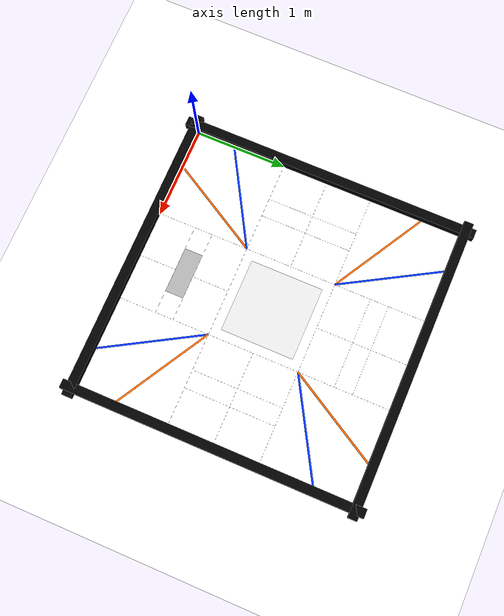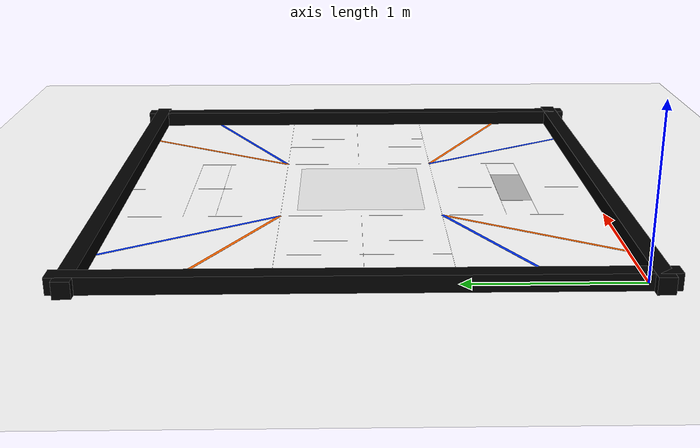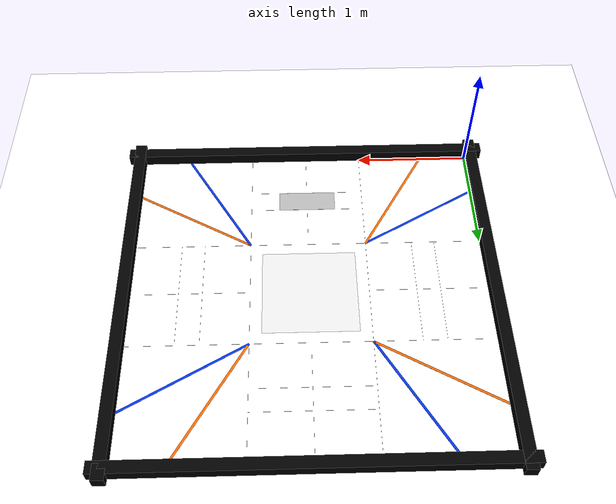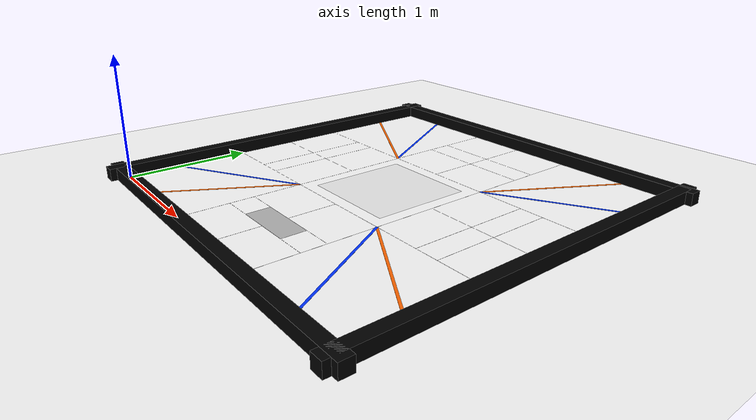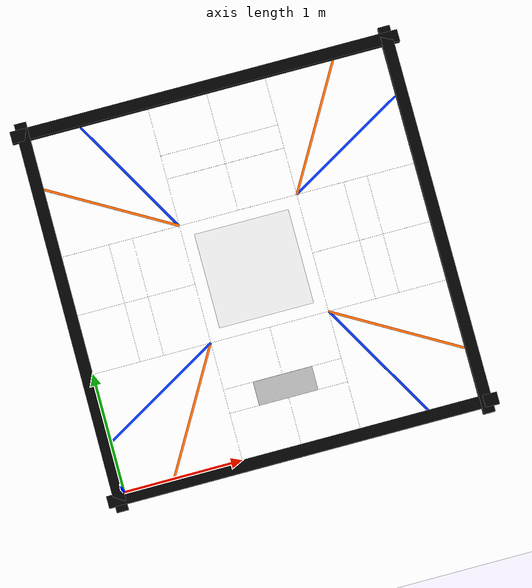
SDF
<?xml version='1.0' encoding='utf-8'?>
<sdf version="1.7">
  <world name="wro_track_2026">
    <physics name="default_physics" default="true" type="ode">
      <max_step_size>0.001</max_step_size>
      <real_time_factor>1.0</real_time_factor>
      <real_time_update_rate>1000</real_time_update_rate>
    </physics>
    <light name="sun" type="directional">
      <pose>0 0 10 0 0 0</pose>
      <diffuse>0.8 0.8 0.8 1</diffuse>
      <specular>0.2 0.2 0.2 1</specular>
      <direction>-0.5 -0.5 -1.0</direction>
      <cast_shadows>true</cast_shadows>
    </light>
    <light name="ambient_light" type="point">
      <pose>0 0 3 0 0 0</pose>
      <diffuse>0.5 0.5 0.5 1</diffuse>
      <specular>0.1 0.1 0.1 1</specular>
      <attenuation>
        <range>20</range>
        <constant>0.5</constant>
        <linear>0.01</linear>
        <quadratic>0.001</quadratic>
      </attenuation>
    </light>
    <model name="ground">
      <static>true</static>
      <pose>1.5 1.5 0 0 0 0</pose>
      <link name="link">
        <visual name="visual">
          <geometry>
            <plane>
              <normal>0 0 1</normal>
              <size>3.2 3.2</size>
            </plane>
          </geometry>
          <material>
            <ambient>1.0 1.0 1.0 1</ambient>
            <diffuse>1.0 1.0 1.0 1</diffuse>
          </material>
        </visual>
        <collision name="collision">
          <geometry>
            <plane>
              <normal>0 0 1</normal>
              <size>3.2 3.2</size>
            </plane>
          </geometry>
          <surface>
            <friction>
              <ode>
                <mu>0.8</mu>
                <mu2>0.8</mu2>
              </ode>
            </friction>
          </surface>
        </collision>
      </link>
    </model>
    <model name="exterior_wall_north">
      <static>true</static>
      <pose>1.5 3.05 0.05 0 0 0</pose>
      <link name="link">
        <visual name="visual">
          <geometry>
            <box>
              <size>3.3000000000000003 0.1 0.1</size>
            </box>
          </geometry>
          <material>
            <ambient>0.0 0.0 0.0 1</ambient>
            <diffuse>0.0 0.0 0.0 1</diffuse>
          </material>
        </visual>
        <collision name="collision">
          <geometry>
            <box>
              <size>3.3800000000000003 0.18 0.1</size>
            </box>
          </geometry>
          <surface>
            <contact>
              <ode>
                <kp>1e8</kp>
                <kd>1000</kd>
                <max_vel>0.0</max_vel>
                <min_depth>0.0</min_depth>
              </ode>
            </contact>
          </surface>
        </collision>
      </link>
    </model>
    <model name="exterior_wall_south">
      <static>true</static>
      <pose>1.5 -0.05 0.05 0 0 0</pose>
      <link name="link">
        <visual name="visual">
          <geometry>
            <box>
              <size>3.3000000000000003 0.1 0.1</size>
            </box>
          </geometry>
          <material>
            <ambient>0.0 0.0 0.0 1</ambient>
            <diffuse>0.0 0.0 0.0 1</diffuse>
          </material>
        </visual>
        <collision name="collision">
          <geometry>
            <box>
              <size>3.3800000000000003 0.18 0.1</size>
            </box>
          </geometry>
          <surface>
            <contact>
              <ode>
                <kp>1e8</kp>
                <kd>1000</kd>
                <max_vel>0.0</max_vel>
                <min_depth>0.0</min_depth>
              </ode>
            </contact>
          </surface>
        </collision>
      </link>
    </model>
    <model name="exterior_wall_east">
      <static>true</static>
      <pose>3.05 1.5 0.05 0 0 0</pose>
      <link name="link">
        <visual name="visual">
          <geometry>
            <box>
              <size>0.1 3.3000000000000003 0.1</size>
            </box>
          </geometry>
          <material>
            <ambient>0.0 0.0 0.0 1</ambient>
            <diffuse>0.0 0.0 0.0 1</diffuse>
          </material>
        </visual>
        <collision name="collision">
          <geometry>
            <box>
              <size>0.18 3.3800000000000003 0.1</size>
            </box>
          </geometry>
          <surface>
            <contact>
              <ode>
                <kp>1e8</kp>
                <kd>1000</kd>
                <max_vel>0.0</max_vel>
                <min_depth>0.0</min_depth>
              </ode>
            </contact>
          </surface>
        </collision>
      </link>
    </model>
    <model name="exterior_wall_west">
      <static>true</static>
      <pose>-0.05 1.5 0.05 0 0 0</pose>
      <link name="link">
        <visual name="visual">
          <geometry>
            <box>
              <size>0.1 3.3000000000000003 0.1</size>
            </box>
          </geometry>
          <material>
            <ambient>0.0 0.0 0.0 1</ambient>
            <diffuse>0.0 0.0 0.0 1</diffuse>
          </material>
        </visual>
        <collision name="collision">
          <geometry>
            <box>
              <size>0.18 3.3800000000000003 0.1</size>
            </box>
          </geometry>
          <surface>
            <contact>
              <ode>
                <kp>1e8</kp>
                <kd>1000</kd>
                <max_vel>0.0</max_vel>
                <min_depth>0.0</min_depth>
              </ode>
            </contact>
          </surface>
        </collision>
      </link>
    </model>
    <model name="corner_ne_blue">
      <static>true</static>
      <pose>2.5 2.29 0.0001 0 0 0.524</pose>
      <link name="link">
        <visual name="visual">
          <geometry>
            <box>
              <size>1.156 0.02 0.001</size>
            </box>
          </geometry>
          <material>
            <ambient>0.0 0.2 1.0 1</ambient>
            <diffuse>0.0 0.2 1.0 1</diffuse>
          </material>
        </visual>
      </link>
    </model>
    <model name="corner_ne_orange">
      <static>true</static>
      <pose>2.29 2.5 0.0001 0 0 1.047</pose>
      <link name="link">
        <visual name="visual">
          <geometry>
            <box>
              <size>1.156 0.02 0.001</size>
            </box>
          </geometry>
          <material>
            <ambient>1.0 0.4 0.0 1</ambient>
            <diffuse>1.0 0.4 0.0 1</diffuse>
          </material>
        </visual>
      </link>
    </model>
    <model name="corner_se_orange">
      <static>true</static>
      <pose>2.5 0.71 0.0001 0 0 -0.524</pose>
      <link name="link">
        <visual name="visual">
          <geometry>
            <box>
              <size>1.156 0.02 0.001</size>
            </box>
          </geometry>
          <material>
            <ambient>1.0 0.4 0.0 1</ambient>
            <diffuse>1.0 0.4 0.0 1</diffuse>
          </material>
        </visual>
      </link>
    </model>
    <model name="corner_se_blue">
      <static>true</static>
      <pose>2.29 0.5 0.0001 0 0 -1.047</pose>
      <link name="link">
        <visual name="visual">
          <geometry>
            <box>
              <size>1.156 0.02 0.001</size>
            </box>
          </geometry>
          <material>
            <ambient>0.0 0.2 1.0 1</ambient>
            <diffuse>0.0 0.2 1.0 1</diffuse>
          </material>
        </visual>
      </link>
    </model>
    <model name="corner_sw_blue">
      <static>true</static>
      <pose>0.5 0.71 0.0001 0 0 -2.618</pose>
      <link name="link">
        <visual name="visual">
          <geometry>
            <box>
              <size>1.156 0.02 0.001</size>
            </box>
          </geometry>
          <material>
            <ambient>0.0 0.2 1.0 1</ambient>
            <diffuse>0.0 0.2 1.0 1</diffuse>
          </material>
        </visual>
      </link>
    </model>
    <model name="corner_sw_orange">
      <static>true</static>
      <pose>0.71 0.5 0.0001 0 0 -2.094</pose>
      <link name="link">
        <visual name="visual">
          <geometry>
            <box>
              <size>1.156 0.02 0.001</size>
            </box>
          </geometry>
          <material>
            <ambient>1.0 0.4 0.0 1</ambient>
            <diffuse>1.0 0.4 0.0 1</diffuse>
          </material>
        </visual>
      </link>
    </model>
    <model name="corner_nw_orange">
      <static>true</static>
      <pose>0.5 2.29 0.0001 0 0 2.618</pose>
      <link name="link">
        <visual name="visual">
          <geometry>
            <box>
              <size>1.156 0.02 0.001</size>
            </box>
          </geometry>
          <material>
            <ambient>1.0 0.4 0.0 1</ambient>
            <diffuse>1.0 0.4 0.0 1</diffuse>
          </material>
        </visual>
      </link>
    </model>
    <model name="corner_nw_blue">
      <static>true</static>
      <pose>0.71 2.5 0.0001 0 0 2.094</pose>
      <link name="link">
        <visual name="visual">
          <geometry>
            <box>
              <size>1.156 0.02 0.001</size>
            </box>
          </geometry>
          <material>
            <ambient>0.0 0.2 1.0 1</ambient>
            <diffuse>0.0 0.2 1.0 1</diffuse>
          </material>
        </visual>
      </link>
    </model>
    <model name="starting_zone_south">
      <static>true</static>
      <pose>1.5 0.5 0.0002 0 0 0</pose>
      <link name="link">
        <visual name="visual">
          <geometry>
            <box>
              <size>0.5 0.2 0.001</size>
            </box>
          </geometry>
          <material>
            <ambient>0.7 0.7 0.7 1</ambient>
            <diffuse>0.7 0.7 0.7 1</diffuse>
          </material>
        </visual>
      </link>
    </model>
    <model name="central_logo">
      <static>true</static>
      <pose>1.5 1.5 0.0001 0 0 0</pose>
      <link name="link">
        <visual name="visual">
          <geometry>
            <box>
              <size>0.8 0.8 0.001</size>
            </box>
          </geometry>
          <material>
            <ambient>0.9 0.9 0.9 0.5</ambient>
            <diffuse>0.9 0.9 0.9 0.5</diffuse>
          </material>
        </visual>
      </link>
    </model>
    <model name="grid_line_v1">
      <static>true</static>
      <pose>1.0 1.5 0.0001 0 0 0</pose>
      <link name="link">
        <visual name="visual">
          <geometry>
            <box>
              <size>0.001 3.0 0.001</size>
            </box>
          </geometry>
          <material>
            <ambient>0.6 0.6 0.6 0.5</ambient>
            <diffuse>0.6 0.6 0.6 0.5</diffuse>
          </material>
        </visual>
      </link>
    </model>
    <model name="grid_line_v2">
      <static>true</static>
      <pose>2.0 1.5 0.0001 0 0 0</pose>
      <link name="link">
        <visual name="visual">
          <geometry>
            <box>
              <size>0.001 3.0 0.001</size>
            </box>
          </geometry>
          <material>
            <ambient>0.6 0.6 0.6 0.5</ambient>
            <diffuse>0.6 0.6 0.6 0.5</diffuse>
          </material>
        </visual>
      </link>
    </model>
    <model name="grid_line_h1">
      <static>true</static>
      <pose>1.5 1.0 0.0001 0 0 0</pose>
      <link name="link">
        <visual name="visual">
          <geometry>
            <box>
              <size>3.0 0.001 0.001</size>
            </box>
          </geometry>
          <material>
            <ambient>0.6 0.6 0.6 0.5</ambient>
            <diffuse>0.6 0.6 0.6 0.5</diffuse>
          </material>
        </visual>
      </link>
    </model>
    <model name="grid_line_h2">
      <static>true</static>
      <pose>1.5 2.0 0.0001 0 0 0</pose>
      <link name="link">
        <visual name="visual">
          <geometry>
            <box>
              <size>3.0 0.001 0.001</size>
            </box>
          </geometry>
          <material>
            <ambient>0.6 0.6 0.6 0.5</ambient>
            <diffuse>0.6 0.6 0.6 0.5</diffuse>
          </material>
        </visual>
      </link>
    </model>
    <model name="corridor_north_center">
      <static>true</static>
      <pose>1.5 2.5 0.0001 0 0 0</pose>
      <link name="link">
        <visual name="visual">
          <geometry>
            <box>
              <size>0.001 1.0 0.001</size>
            </box>
          </geometry>
          <material>
            <ambient>0.5 0.5 0.5 0.4</ambient>
            <diffuse>0.5 0.5 0.5 0.4</diffuse>
          </material>
        </visual>
      </link>
    </model>
    <model name="corridor_north_width1">
      <static>true</static>
      <pose>1.5 2.4 0.0001 0 0 0</pose>
      <link name="link">
        <visual name="visual">
          <geometry>
            <box>
              <size>1.0 0.001 0.001</size>
            </box>
          </geometry>
          <material>
            <ambient>0.5 0.5 0.5 0.4</ambient>
            <diffuse>0.5 0.5 0.5 0.4</diffuse>
          </material>
        </visual>
      </link>
    </model>
    <model name="corridor_north_width2">
      <static>true</static>
      <pose>1.5 2.6 0.0001 0 0 0</pose>
      <link name="link">
        <visual name="visual">
          <geometry>
            <box>
              <size>1.0 0.001 0.001</size>
            </box>
          </geometry>
          <material>
            <ambient>0.5 0.5 0.5 0.4</ambient>
            <diffuse>0.5 0.5 0.5 0.4</diffuse>
          </material>
        </visual>
      </link>
    </model>
    <model name="corridor_south_center">
      <static>true</static>
      <pose>1.5 0.5 0.0001 0 0 0</pose>
      <link name="link">
        <visual name="visual">
          <geometry>
            <box>
              <size>0.001 1.0 0.001</size>
            </box>
          </geometry>
          <material>
            <ambient>0.5 0.5 0.5 0.4</ambient>
            <diffuse>0.5 0.5 0.5 0.4</diffuse>
          </material>
        </visual>
      </link>
    </model>
    <model name="corridor_south_width1">
      <static>true</static>
      <pose>1.5 0.4 0.0001 0 0 0</pose>
      <link name="link">
        <visual name="visual">
          <geometry>
            <box>
              <size>1.0 0.001 0.001</size>
            </box>
          </geometry>
          <material>
            <ambient>0.5 0.5 0.5 0.4</ambient>
            <diffuse>0.5 0.5 0.5 0.4</diffuse>
          </material>
        </visual>
      </link>
    </model>
    <model name="corridor_south_width2">
      <static>true</static>
      <pose>1.5 0.6 0.0001 0 0 0</pose>
      <link name="link">
        <visual name="visual">
          <geometry>
            <box>
              <size>1.0 0.001 0.001</size>
            </box>
          </geometry>
          <material>
            <ambient>0.5 0.5 0.5 0.4</ambient>
            <diffuse>0.5 0.5 0.5 0.4</diffuse>
          </material>
        </visual>
      </link>
    </model>
    <model name="corridor_east_center">
      <static>true</static>
      <pose>2.5 1.5 0.0001 0 0 0</pose>
      <link name="link">
        <visual name="visual">
          <geometry>
            <box>
              <size>1.0 0.001 0.001</size>
            </box>
          </geometry>
          <material>
            <ambient>0.5 0.5 0.5 0.4</ambient>
            <diffuse>0.5 0.5 0.5 0.4</diffuse>
          </material>
        </visual>
      </link>
    </model>
    <model name="corridor_east_width1">
      <static>true</static>
      <pose>2.4 1.5 0.0001 0 0 0</pose>
      <link name="link">
        <visual name="visual">
          <geometry>
            <box>
              <size>0.001 1.0 0.001</size>
            </box>
          </geometry>
          <material>
            <ambient>0.5 0.5 0.5 0.4</ambient>
            <diffuse>0.5 0.5 0.5 0.4</diffuse>
          </material>
        </visual>
      </link>
    </model>
    <model name="corridor_east_width2">
      <static>true</static>
      <pose>2.6 1.5 0.0001 0 0 0</pose>
      <link name="link">
        <visual name="visual">
          <geometry>
            <box>
              <size>0.001 1.0 0.001</size>
            </box>
          </geometry>
          <material>
            <ambient>0.5 0.5 0.5 0.4</ambient>
            <diffuse>0.5 0.5 0.5 0.4</diffuse>
          </material>
        </visual>
      </link>
    </model>
    <model name="corridor_west_center">
      <static>true</static>
      <pose>0.5 1.5 0.0001 0 0 0</pose>
      <link name="link">
        <visual name="visual">
          <geometry>
            <box>
              <size>1.0 0.001 0.001</size>
            </box>
          </geometry>
          <material>
            <ambient>0.5 0.5 0.5 0.4</ambient>
            <diffuse>0.5 0.5 0.5 0.4</diffuse>
          </material>
        </visual>
      </link>
    </model>
    <model name="corridor_west_width1">
      <static>true</static>
      <pose>0.4 1.5 0.0001 0 0 0</pose>
      <link name="link">
        <visual name="visual">
          <geometry>
            <box>
              <size>0.001 1.0 0.001</size>
            </box>
          </geometry>
          <material>
            <ambient>0.5 0.5 0.5 0.4</ambient>
            <diffuse>0.5 0.5 0.5 0.4</diffuse>
          </material>
        </visual>
      </link>
    </model>
    <model name="corridor_west_width2">
      <static>true</static>
      <pose>0.6 1.5 0.0001 0 0 0</pose>
      <link name="link">
        <visual name="visual">
          <geometry>
            <box>
              <size>0.001 1.0 0.001</size>
            </box>
          </geometry>
          <material>
            <ambient>0.5 0.5 0.5 0.4</ambient>
            <diffuse>0.5 0.5 0.5 0.4</diffuse>
          </material>
        </visual>
      </link>
    </model>
  </world>
</sdf>
